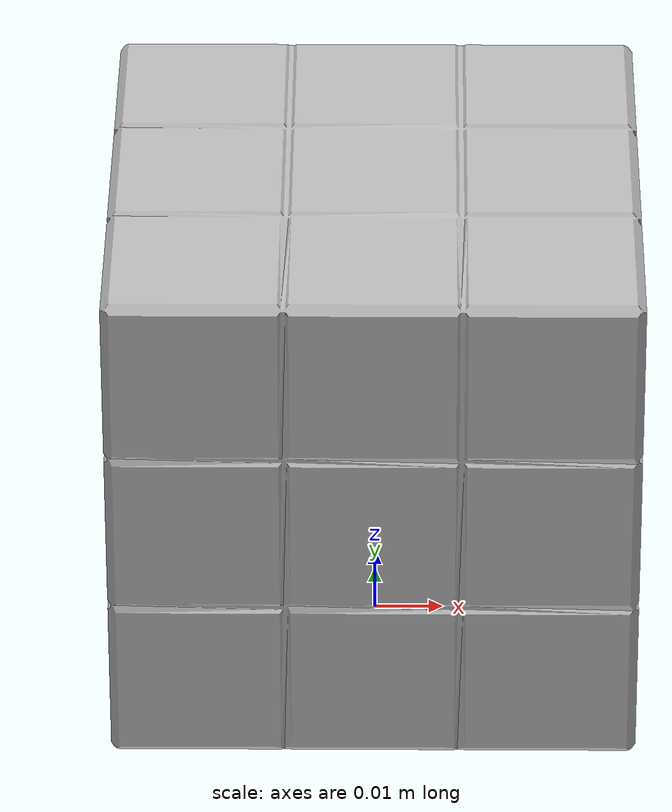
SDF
<?xml version="1.0" ?>
<sdf version="1.6">
  <model name="aws_robomaker_retail_MagicCube_01">
    <link name="link">
      <inertial>
        <mass>0.2</mass>
        <inertia>
          <ixx>0.01</ixx>
          <ixy>0</ixy>
          <ixz>0</ixz>
          <iyy>0.01</iyy>
          <iyz>0</iyz>
          <izz>0.01</izz>
        </inertia>
      </inertial>
      <collision name="collision">
        <geometry>
          <mesh>
            <uri>file://models/aws_robomaker_retail_MagicCube_01/meshes/aws_MagicCube_01_collision.DAE</uri>
            <scale>1 1 1</scale>
          </mesh>
        </geometry>
      </collision>
      <visual name="visual">
	    <geometry>
          <mesh>
            <uri>file://models/aws_robomaker_retail_MagicCube_01/meshes/aws_MagicCube_01_visual.DAE</uri>
          </mesh>
        </geometry>
        <meta>
          <layer>1</layer>
        </meta>
      </visual>
    </link>
    <static>1</static>
  </model>
</sdf>
